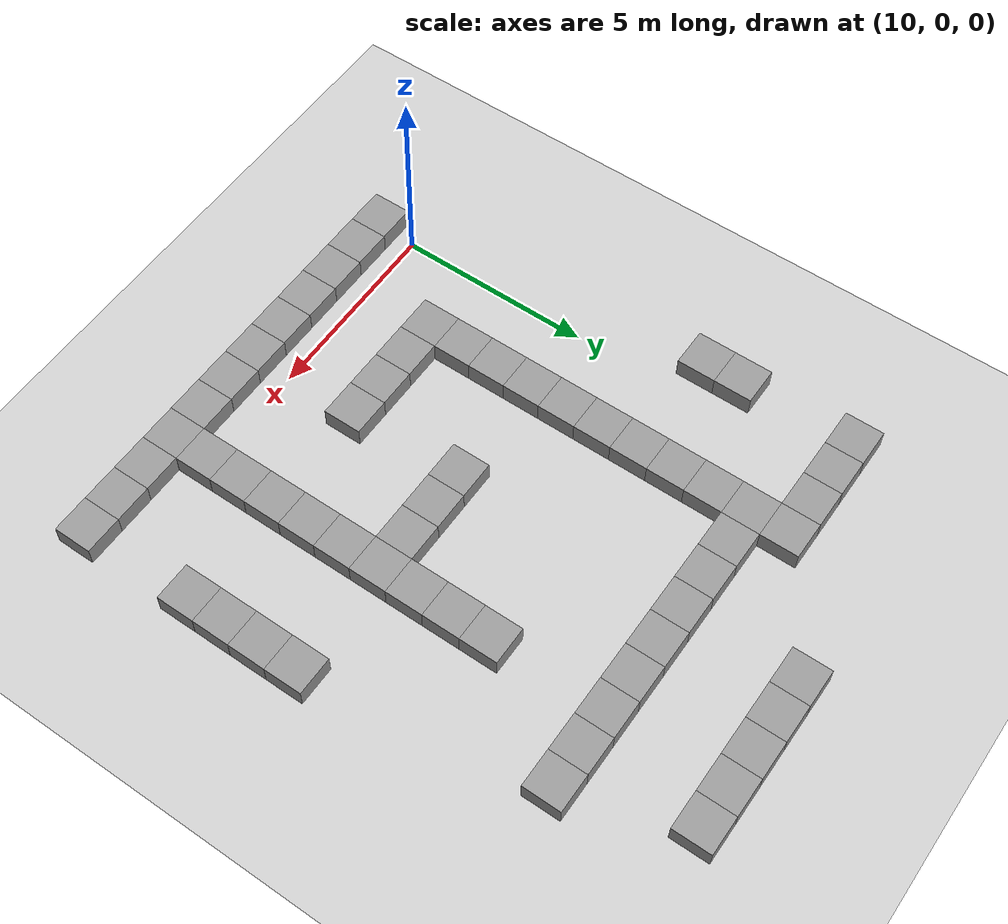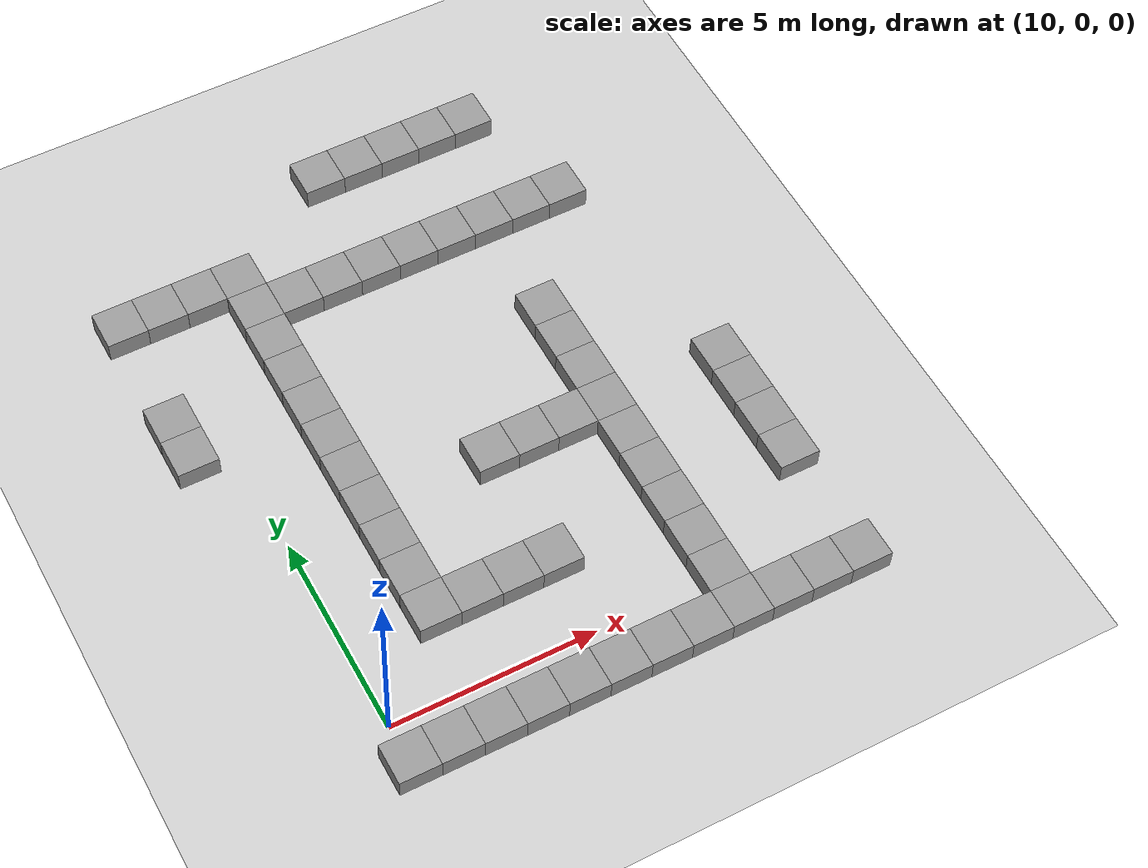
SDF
<sdf version="1.4">
 <world name="default">
  <model name="ground_plane">
   <static>1</static>
   <link name="link">
    <collision name="collision">
     <geometry><plane><normal>0 0 1</normal><size>100 100</size></plane></geometry>
     <surface><friction><ode><mu>100</mu><mu2>50</mu2></ode></friction></surface>
    </collision>
    <visual name="visual">
     <cast_shadows>0</cast_shadows>
     <geometry><plane><normal>0 0 1</normal><size>100 100</size></plane></geometry>
     <material>
      <script><uri>file://media/materials/scripts/gazebo.material</uri><name>Gazebo/Grey</name></script>
     </material>
    </visual>
    <velocity_decay><linear>0</linear><angular>0</angular></velocity_decay>
   </link>
  </model>
  <model name="unit_box_10">
   <pose>10 -1 0 0 -0 0</pose>
   <link name="link">
    <inertial>
     <mass>1</mass>
     <inertia><ixx>1</ixx><ixy>0</ixy><ixz>0</ixz><iyy>1</iyy><iyz>0</iyz><izz>1</izz></inertia>
    </inertial>
    <collision name="collision"><geometry><box><size>1 1 1</size></box></geometry></collision>
    <visual name="visual">
     <geometry><box><size>1 1 1</size></box></geometry>
     <material>
      <script><uri>file://media/materials/scripts/gazebo.material</uri><name>Gazebo/Grey</name></script>
     </material>
    </visual>
    <velocity_decay><linear>0</linear><angular>0</angular></velocity_decay>
   </link>
   <static>1</static>
  </model>
  <model name="unit_box_11">
   <pose>11 -1 0 0 -0 0</pose>
   <link name="link">
    <inertial>
     <mass>1</mass>
     <inertia><ixx>1</ixx><ixy>0</ixy><ixz>0</ixz><iyy>1</iyy><iyz>0</iyz><izz>1</izz></inertia>
    </inertial>
    <collision name="collision"><geometry><box><size>1 1 1</size></box></geometry></collision>
    <visual name="visual">
     <geometry><box><size>1 1 1</size></box></geometry>
     <material>
      <script><uri>file://media/materials/scripts/gazebo.material</uri><name>Gazebo/Grey</name></script>
     </material>
    </visual>
    <velocity_decay><linear>0</linear><angular>0</angular></velocity_decay>
   </link>
   <static>1</static>
  </model>
  <model name="unit_box_12">
   <pose>12 -1 0 0 -0 0</pose>
   <link name="link">
    <inertial>
     <mass>1</mass>
     <inertia><ixx>1</ixx><ixy>0</ixy><ixz>0</ixz><iyy>1</iyy><iyz>0</iyz><izz>1</izz></inertia>
    </inertial>
    <collision name="collision"><geometry><box><size>1 1 1</size></box></geometry></collision>
    <visual name="visual">
     <geometry><box><size>1 1 1</size></box></geometry>
     <material>
      <script><uri>file://media/materials/scripts/gazebo.material</uri><name>Gazebo/Grey</name></script>
     </material>
    </visual>
    <velocity_decay><linear>0</linear><angular>0</angular></velocity_decay>
   </link>
   <static>1</static>
  </model>
  <model name="unit_box_13">
   <pose>13 -1 0 0 -0 0</pose>
   <link name="link">
    <inertial>
     <mass>1</mass>
     <inertia><ixx>1</ixx><ixy>0</ixy><ixz>0</ixz><iyy>1</iyy><iyz>0</iyz><izz>1</izz></inertia>
    </inertial>
    <collision name="collision"><geometry><box><size>1 1 1</size></box></geometry></collision>
    <visual name="visual">
     <geometry><box><size>1 1 1</size></box></geometry>
     <material>
      <script><uri>file://media/materials/scripts/gazebo.material</uri><name>Gazebo/Grey</name></script>
     </material>
    </visual>
    <velocity_decay><linear>0</linear><angular>0</angular></velocity_decay>
   </link>
   <static>1</static>
  </model>
  <model name="unit_box_14">
   <pose>14 -1 0 0 -0 0</pose>
   <link name="link">
    <inertial>
     <mass>1</mass>
     <inertia><ixx>1</ixx><ixy>0</ixy><ixz>0</ixz><iyy>1</iyy><iyz>0</iyz><izz>1</izz></inertia>
    </inertial>
    <collision name="collision"><geometry><box><size>1 1 1</size></box></geometry></collision>
    <visual name="visual">
     <geometry><box><size>1 1 1</size></box></geometry>
     <material>
      <script><uri>file://media/materials/scripts/gazebo.material</uri><name>Gazebo/Grey</name></script>
     </material>
    </visual>
    <velocity_decay><linear>0</linear><angular>0</angular></velocity_decay>
   </link>
   <static>1</static>
  </model>
  <model name="unit_box_15">
   <pose>15 -1 0 0 -0 0</pose>
   <link name="link">
    <inertial>
     <mass>1</mass>
     <inertia><ixx>1</ixx><ixy>0</ixy><ixz>0</ixz><iyy>1</iyy><iyz>0</iyz><izz>1</izz></inertia>
    </inertial>
    <collision name="collision"><geometry><box><size>1 1 1</size></box></geometry></collision>
    <visual name="visual">
     <geometry><box><size>1 1 1</size></box></geometry>
     <material>
      <script><uri>file://media/materials/scripts/gazebo.material</uri><name>Gazebo/Grey</name></script>
     </material>
    </visual>
    <velocity_decay><linear>0</linear><angular>0</angular></velocity_decay>
   </link>
   <static>1</static>
  </model>
  <model name="unit_box_16">
   <pose>16 -1 0 0 -0 0</pose>
   <link name="link">
    <inertial>
     <mass>1</mass>
     <inertia><ixx>1</ixx><ixy>0</ixy><ixz>0</ixz><iyy>1</iyy><iyz>0</iyz><izz>1</izz></inertia>
    </inertial>
    <collision name="collision"><geometry><box><size>1 1 1</size></box></geometry></collision>
    <visual name="visual">
     <geometry><box><size>1 1 1</size></box></geometry>
     <material>
      <script><uri>file://media/materials/scripts/gazebo.material</uri><name>Gazebo/Grey</name></script>
     </material>
    </visual>
    <velocity_decay><linear>0</linear><angular>0</angular></velocity_decay>
   </link>
   <static>1</static>
  </model>
  <model name="unit_box_17">
   <pose>17 -1 0 0 -0 0</pose>
   <link name="link">
    <inertial>
     <mass>1</mass>
     <inertia><ixx>1</ixx><ixy>0</ixy><ixz>0</ixz><iyy>1</iyy><iyz>0</iyz><izz>1</izz></inertia>
    </inertial>
    <collision name="collision"><geometry><box><size>1 1 1</size></box></geometry></collision>
    <visual name="visual">
     <geometry><box><size>1 1 1</size></box></geometry>
     <material>
      <script><uri>file://media/materials/scripts/gazebo.material</uri><name>Gazebo/Grey</name></script>
     </material>
    </visual>
    <velocity_decay><linear>0</linear><angular>0</angular></velocity_decay>
   </link>
   <static>1</static>
  </model>
  <model name="unit_box_18">
   <pose>18 -1 0 0 -0 0</pose>
   <link name="link">
    <inertial>
     <mass>1</mass>
     <inertia><ixx>1</ixx><ixy>0</ixy><ixz>0</ixz><iyy>1</iyy><iyz>0</iyz><izz>1</izz></inertia>
    </inertial>
    <collision name="collision"><geometry><box><size>1 1 1</size></box></geometry></collision>
    <visual name="visual">
     <geometry><box><size>1 1 1</size></box></geometry>
     <material>
      <script><uri>file://media/materials/scripts/gazebo.material</uri><name>Gazebo/Grey</name></script>
     </material>
    </visual>
    <velocity_decay><linear>0</linear><angular>0</angular></velocity_decay>
   </link>
   <static>1</static>
  </model>
  <model name="unit_box_19">
   <pose>19 -1 0 0 -0 0</pose>
   <link name="link">
    <inertial>
     <mass>1</mass>
     <inertia><ixx>1</ixx><ixy>0</ixy><ixz>0</ixz><iyy>1</iyy><iyz>0</iyz><izz>1</izz></inertia>
    </inertial>
    <collision name="collision"><geometry><box><size>1 1 1</size></box></geometry></collision>
    <visual name="visual">
     <geometry><box><size>1 1 1</size></box></geometry>
     <material>
      <script><uri>file://media/materials/scripts/gazebo.material</uri><name>Gazebo/Grey</name></script>
     </material>
    </visual>
    <velocity_decay><linear>0</linear><angular>0</angular></velocity_decay>
   </link>
   <static>1</static>
  </model>
  <model name="unit_box_20">
   <pose>20 -1 0 0 -0 0</pose>
   <link name="link">
    <inertial>
     <mass>1</mass>
     <inertia><ixx>1</ixx><ixy>0</ixy><ixz>0</ixz><iyy>1</iyy><iyz>0</iyz><izz>1</izz></inertia>
    </inertial>
    <collision name="collision"><geometry><box><size>1 1 1</size></box></geometry></collision>
    <visual name="visual">
     <geometry><box><size>1 1 1</size></box></geometry>
     <material>
      <script><uri>file://media/materials/scripts/gazebo.material</uri><name>Gazebo/Grey</name></script>
     </material>
    </visual>
    <velocity_decay><linear>0</linear><angular>0</angular></velocity_decay>
   </link>
   <static>1</static>
  </model>
  <model name="unit_box_21">
   <pose>21 -1 0 0 -0 0</pose>
   <link name="link">
    <inertial>
     <mass>1</mass>
     <inertia><ixx>1</ixx><ixy>0</ixy><ixz>0</ixz><iyy>1</iyy><iyz>0</iyz><izz>1</izz></inertia>
    </inertial>
    <collision name="collision"><geometry><box><size>1 1 1</size></box></geometry></collision>
    <visual name="visual">
     <geometry><box><size>1 1 1</size></box></geometry>
     <material>
      <script><uri>file://media/materials/scripts/gazebo.material</uri><name>Gazebo/Grey</name></script>
     </material>
    </visual>
    <velocity_decay><linear>0</linear><angular>0</angular></velocity_decay>
   </link>
   <static>1</static>
  </model>
  <model name="unit_box_133">
   <pose>9 8 0 0 -0 0</pose>
   <link name="link">
    <inertial>
     <mass>1</mass>
     <inertia><ixx>1</ixx><ixy>0</ixy><ixz>0</ixz><iyy>1</iyy><iyz>0</iyz><izz>1</izz></inertia>
    </inertial>
    <collision name="collision"><geometry><box><size>1 1 1</size></box></geometry></collision>
    <visual name="visual">
     <geometry><box><size>1 1 1</size></box></geometry>
     <material>
      <script><uri>file://media/materials/scripts/gazebo.material</uri><name>Gazebo/Grey</name></script>
     </material>
    </visual>
    <velocity_decay><linear>0</linear><angular>0</angular></velocity_decay>
   </link>
   <static>1</static>
  </model>
  <model name="unit_box_134">
   <pose>9 9 0 0 -0 0</pose>
   <link name="link">
    <inertial>
     <mass>1</mass>
     <inertia><ixx>1</ixx><ixy>0</ixy><ixz>0</ixz><iyy>1</iyy><iyz>0</iyz><izz>1</izz></inertia>
    </inertial>
    <collision name="collision"><geometry><box><size>1 1 1</size></box></geometry></collision>
    <visual name="visual">
     <geometry><box><size>1 1 1</size></box></geometry>
     <material>
      <script><uri>file://media/materials/scripts/gazebo.material</uri><name>Gazebo/Grey</name></script>
     </material>
    </visual>
    <velocity_decay><linear>0</linear><angular>0</angular></velocity_decay>
   </link>
   <static>1</static>
  </model>
  <model name="unit_box_155">
   <pose>9 12 0 0 -0 0</pose>
   <link name="link">
    <inertial>
     <mass>1</mass>
     <inertia><ixx>1</ixx><ixy>0</ixy><ixz>0</ixz><iyy>1</iyy><iyz>0</iyz><izz>1</izz></inertia>
    </inertial>
    <collision name="collision"><geometry><box><size>1 1 1</size></box></geometry></collision>
    <visual name="visual">
     <geometry><box><size>1 1 1</size></box></geometry>
     <material>
      <script><uri>file://media/materials/scripts/gazebo.material</uri><name>Gazebo/Grey</name></script>
     </material>
    </visual>
    <velocity_decay><linear>0</linear><angular>0</angular></velocity_decay>
   </link>
   <static>1</static>
  </model>
  <model name="unit_box_156">
   <pose>10 12 0 0 -0 0</pose>
   <link name="link">
    <inertial>
     <mass>1</mass>
     <inertia><ixx>1</ixx><ixy>0</ixy><ixz>0</ixz><iyy>1</iyy><iyz>0</iyz><izz>1</izz></inertia>
    </inertial>
    <collision name="collision"><geometry><box><size>1 1 1</size></box></geometry></collision>
    <visual name="visual">
     <geometry><box><size>1 1 1</size></box></geometry>
     <material>
      <script><uri>file://media/materials/scripts/gazebo.material</uri><name>Gazebo/Grey</name></script>
     </material>
    </visual>
    <velocity_decay><linear>0</linear><angular>0</angular></velocity_decay>
   </link>
   <static>1</static>
  </model>
  <model name="unit_box_157">
   <pose>11 12 0 0 -0 0</pose>
   <link name="link">
    <inertial>
     <mass>1</mass>
     <inertia><ixx>1</ixx><ixy>0</ixy><ixz>0</ixz><iyy>1</iyy><iyz>0</iyz><izz>1</izz></inertia>
    </inertial>
    <collision name="collision"><geometry><box><size>1 1 1</size></box></geometry></collision>
    <visual name="visual">
     <geometry><box><size>1 1 1</size></box></geometry>
     <material>
      <script><uri>file://media/materials/scripts/gazebo.material</uri><name>Gazebo/Grey</name></script>
     </material>
    </visual>
    <velocity_decay><linear>0</linear><angular>0</angular></velocity_decay>
   </link>
   <static>1</static>
  </model>
  <model name="unit_box_158">
   <pose>12 12 0 0 -0 0</pose>
   <link name="link">
    <inertial>
     <mass>1</mass>
     <inertia><ixx>1</ixx><ixy>0</ixy><ixz>0</ixz><iyy>1</iyy><iyz>0</iyz><izz>1</izz></inertia>
    </inertial>
    <collision name="collision"><geometry><box><size>1 1 1</size></box></geometry></collision>
    <visual name="visual">
     <geometry><box><size>1 1 1</size></box></geometry>
     <material>
      <script><uri>file://media/materials/scripts/gazebo.material</uri><name>Gazebo/Grey</name></script>
     </material>
    </visual>
    <velocity_decay><linear>0</linear><angular>0</angular></velocity_decay>
   </link>
   <static>1</static>
  </model>
  <model name="unit_box_159">
   <pose>12 11 0 0 -0 0</pose>
   <link name="link">
    <inertial>
     <mass>1</mass>
     <inertia><ixx>1</ixx><ixy>0</ixy><ixz>0</ixz><iyy>1</iyy><iyz>0</iyz><izz>1</izz></inertia>
    </inertial>
    <collision name="collision"><geometry><box><size>1 1 1</size></box></geometry></collision>
    <visual name="visual">
     <geometry><box><size>1 1 1</size></box></geometry>
     <material>
      <script><uri>file://media/materials/scripts/gazebo.material</uri><name>Gazebo/Grey</name></script>
     </material>
    </visual>
    <velocity_decay><linear>0</linear><angular>0</angular></velocity_decay>
   </link>
   <static>1</static>
  </model>
  <model name="unit_box_160">
   <pose>12 10 0 0 -0 0</pose>
   <link name="link">
    <inertial>
     <mass>1</mass>
     <inertia><ixx>1</ixx><ixy>0</ixy><ixz>0</ixz><iyy>1</iyy><iyz>0</iyz><izz>1</izz></inertia>
    </inertial>
    <collision name="collision"><geometry><box><size>1 1 1</size></box></geometry></collision>
    <visual name="visual">
     <geometry><box><size>1 1 1</size></box></geometry>
     <material>
      <script><uri>file://media/materials/scripts/gazebo.material</uri><name>Gazebo/Grey</name></script>
     </material>
    </visual>
    <velocity_decay><linear>0</linear><angular>0</angular></velocity_decay>
   </link>
   <static>1</static>
  </model>
  <model name="unit_box_161">
   <pose>12 9 0 0 -0 0</pose>
   <link name="link">
    <inertial>
     <mass>1</mass>
     <inertia><ixx>1</ixx><ixy>0</ixy><ixz>0</ixz><iyy>1</iyy><iyz>0</iyz><izz>1</izz></inertia>
    </inertial>
    <collision name="collision"><geometry><box><size>1 1 1</size></box></geometry></collision>
    <visual name="visual">
     <geometry><box><size>1 1 1</size></box></geometry>
     <material>
      <script><uri>file://media/materials/scripts/gazebo.material</uri><name>Gazebo/Grey</name></script>
     </material>
    </visual>
    <velocity_decay><linear>0</linear><angular>0</angular></velocity_decay>
   </link>
   <static>1</static>
  </model>
  <model name="unit_box_162">
   <pose>12 8 0 0 -0 0</pose>
   <link name="link">
    <inertial>
     <mass>1</mass>
     <inertia><ixx>1</ixx><ixy>0</ixy><ixz>0</ixz><iyy>1</iyy><iyz>0</iyz><izz>1</izz></inertia>
    </inertial>
    <collision name="collision"><geometry><box><size>1 1 1</size></box></geometry></collision>
    <visual name="visual">
     <geometry><box><size>1 1 1</size></box></geometry>
     <material>
      <script><uri>file://media/materials/scripts/gazebo.material</uri><name>Gazebo/Grey</name></script>
     </material>
    </visual>
    <velocity_decay><linear>0</linear><angular>0</angular></velocity_decay>
   </link>
   <static>1</static>
  </model>
  <model name="unit_box_163">
   <pose>12 7 0 0 -0 0</pose>
   <link name="link">
    <inertial>
     <mass>1</mass>
     <inertia><ixx>1</ixx><ixy>0</ixy><ixz>0</ixz><iyy>1</iyy><iyz>0</iyz><izz>1</izz></inertia>
    </inertial>
    <collision name="collision"><geometry><box><size>1 1 1</size></box></geometry></collision>
    <visual name="visual">
     <geometry><box><size>1 1 1</size></box></geometry>
     <material>
      <script><uri>file://media/materials/scripts/gazebo.material</uri><name>Gazebo/Grey</name></script>
     </material>
    </visual>
    <velocity_decay><linear>0</linear><angular>0</angular></velocity_decay>
   </link>
   <static>1</static>
  </model>
  <model name="unit_box_164">
   <pose>12 6 0 0 -0 0</pose>
   <link name="link">
    <inertial>
     <mass>1</mass>
     <inertia><ixx>1</ixx><ixy>0</ixy><ixz>0</ixz><iyy>1</iyy><iyz>0</iyz><izz>1</izz></inertia>
    </inertial>
    <collision name="collision"><geometry><box><size>1 1 1</size></box></geometry></collision>
    <visual name="visual">
     <geometry><box><size>1 1 1</size></box></geometry>
     <material>
      <script><uri>file://media/materials/scripts/gazebo.material</uri><name>Gazebo/Grey</name></script>
     </material>
    </visual>
    <velocity_decay><linear>0</linear><angular>0</angular></velocity_decay>
   </link>
   <static>1</static>
  </model>
  <model name="unit_box_165">
   <pose>12 5 0 0 -0 0</pose>
   <link name="link">
    <inertial>
     <mass>1</mass>
     <inertia><ixx>1</ixx><ixy>0</ixy><ixz>0</ixz><iyy>1</iyy><iyz>0</iyz><izz>1</izz></inertia>
    </inertial>
    <collision name="collision"><geometry><box><size>1 1 1</size></box></geometry></collision>
    <visual name="visual">
     <geometry><box><size>1 1 1</size></box></geometry>
     <material>
      <script><uri>file://media/materials/scripts/gazebo.material</uri><name>Gazebo/Grey</name></script>
     </material>
    </visual>
    <velocity_decay><linear>0</linear><angular>0</angular></velocity_decay>
   </link>
   <static>1</static>
  </model>
  <model name="unit_box_166">
   <pose>12 4 0 0 -0 0</pose>
   <link name="link">
    <inertial>
     <mass>1</mass>
     <inertia><ixx>1</ixx><ixy>0</ixy><ixz>0</ixz><iyy>1</iyy><iyz>0</iyz><izz>1</izz></inertia>
    </inertial>
    <collision name="collision"><geometry><box><size>1 1 1</size></box></geometry></collision>
    <visual name="visual">
     <geometry><box><size>1 1 1</size></box></geometry>
     <material>
      <script><uri>file://media/materials/scripts/gazebo.material</uri><name>Gazebo/Grey</name></script>
     </material>
    </visual>
    <velocity_decay><linear>0</linear><angular>0</angular></velocity_decay>
   </link>
   <static>1</static>
  </model>
  <model name="unit_box_167">
   <pose>12 3 0 0 -0 0</pose>
   <link name="link">
    <inertial>
     <mass>1</mass>
     <inertia><ixx>1</ixx><ixy>0</ixy><ixz>0</ixz><iyy>1</iyy><iyz>0</iyz><izz>1</izz></inertia>
    </inertial>
    <collision name="collision"><geometry><box><size>1 1 1</size></box></geometry></collision>
    <visual name="visual">
     <geometry><box><size>1 1 1</size></box></geometry>
     <material>
      <script><uri>file://media/materials/scripts/gazebo.material</uri><name>Gazebo/Grey</name></script>
     </material>
    </visual>
    <velocity_decay><linear>0</linear><angular>0</angular></velocity_decay>
   </link>
   <static>1</static>
  </model>
  <model name="unit_box_168">
   <pose>12 2 0 0 -0 0</pose>
   <link name="link">
    <inertial>
     <mass>1</mass>
     <inertia><ixx>1</ixx><ixy>0</ixy><ixz>0</ixz><iyy>1</iyy><iyz>0</iyz><izz>1</izz></inertia>
    </inertial>
    <collision name="collision"><geometry><box><size>1 1 1</size></box></geometry></collision>
    <visual name="visual">
     <geometry><box><size>1 1 1</size></box></geometry>
     <material>
      <script><uri>file://media/materials/scripts/gazebo.material</uri><name>Gazebo/Grey</name></script>
     </material>
    </visual>
    <velocity_decay><linear>0</linear><angular>0</angular></velocity_decay>
   </link>
   <static>1</static>
  </model>
  <model name="unit_box_169">
   <pose>13 2 0 0 -0 0</pose>
   <link name="link">
    <inertial>
     <mass>1</mass>
     <inertia><ixx>1</ixx><ixy>0</ixy><ixz>0</ixz><iyy>1</iyy><iyz>0</iyz><izz>1</izz></inertia>
    </inertial>
    <collision name="collision"><geometry><box><size>1 1 1</size></box></geometry></collision>
    <visual name="visual">
     <geometry><box><size>1 1 1</size></box></geometry>
     <material>
      <script><uri>file://media/materials/scripts/gazebo.material</uri><name>Gazebo/Grey</name></script>
     </material>
    </visual>
    <velocity_decay><linear>0</linear><angular>0</angular></velocity_decay>
   </link>
   <static>1</static>
  </model>
  <model name="unit_box_170">
   <pose>14 2 0 0 -0 0</pose>
   <link name="link">
    <inertial>
     <mass>1</mass>
     <inertia><ixx>1</ixx><ixy>0</ixy><ixz>0</ixz><iyy>1</iyy><iyz>0</iyz><izz>1</izz></inertia>
    </inertial>
    <collision name="collision"><geometry><box><size>1 1 1</size></box></geometry></collision>
    <visual name="visual">
     <geometry><box><size>1 1 1</size></box></geometry>
     <material>
      <script><uri>file://media/materials/scripts/gazebo.material</uri><name>Gazebo/Grey</name></script>
     </material>
    </visual>
    <velocity_decay><linear>0</linear><angular>0</angular></velocity_decay>
   </link>
   <static>1</static>
  </model>
  <model name="unit_box_171">
   <pose>15 2 0 0 -0 0</pose>
   <link name="link">
    <inertial>
     <mass>1</mass>
     <inertia><ixx>1</ixx><ixy>0</ixy><ixz>0</ixz><iyy>1</iyy><iyz>0</iyz><izz>1</izz></inertia>
    </inertial>
    <collision name="collision"><geometry><box><size>1 1 1</size></box></geometry></collision>
    <visual name="visual">
     <geometry><box><size>1 1 1</size></box></geometry>
     <material>
      <script><uri>file://media/materials/scripts/gazebo.material</uri><name>Gazebo/Grey</name></script>
     </material>
    </visual>
    <velocity_decay><linear>0</linear><angular>0</angular></velocity_decay>
   </link>
   <static>1</static>
  </model>
  <model name="unit_box_172">
   <pose>18 0 0 0 -0 0</pose>
   <link name="link">
    <inertial>
     <mass>1</mass>
     <inertia><ixx>1</ixx><ixy>0</ixy><ixz>0</ixz><iyy>1</iyy><iyz>0</iyz><izz>1</izz></inertia>
    </inertial>
    <collision name="collision"><geometry><box><size>1 1 1</size></box></geometry></collision>
    <visual name="visual">
     <geometry><box><size>1 1 1</size></box></geometry>
     <material>
      <script><uri>file://media/materials/scripts/gazebo.material</uri><name>Gazebo/Grey</name></script>
     </material>
    </visual>
    <velocity_decay><linear>0</linear><angular>0</angular></velocity_decay>
   </link>
   <static>1</static>
  </model>
  <model name="unit_box_173">
   <pose>18 1 0 0 -0 0</pose>
   <link name="link">
    <inertial>
     <mass>1</mass>
     <inertia><ixx>1</ixx><ixy>0</ixy><ixz>0</ixz><iyy>1</iyy><iyz>0</iyz><izz>1</izz></inertia>
    </inertial>
    <collision name="collision"><geometry><box><size>1 1 1</size></box></geometry></collision>
    <visual name="visual">
     <geometry><box><size>1 1 1</size></box></geometry>
     <material>
      <script><uri>file://media/materials/scripts/gazebo.material</uri><name>Gazebo/Grey</name></script>
     </material>
    </visual>
    <velocity_decay><linear>0</linear><angular>0</angular></velocity_decay>
   </link>
   <static>1</static>
  </model>
  <model name="unit_box_174">
   <pose>18 2 0 0 -0 0</pose>
   <link name="link">
    <inertial>
     <mass>1</mass>
     <inertia><ixx>1</ixx><ixy>0</ixy><ixz>0</ixz><iyy>1</iyy><iyz>0</iyz><izz>1</izz></inertia>
    </inertial>
    <collision name="collision"><geometry><box><size>1 1 1</size></box></geometry></collision>
    <visual name="visual">
     <geometry><box><size>1 1 1</size></box></geometry>
     <material>
      <script><uri>file://media/materials/scripts/gazebo.material</uri><name>Gazebo/Grey</name></script>
     </material>
    </visual>
    <velocity_decay><linear>0</linear><angular>0</angular></velocity_decay>
   </link>
   <static>1</static>
  </model>
  <model name="unit_box_175">
   <pose>18 3 0 0 -0 0</pose>
   <link name="link">
    <inertial>
     <mass>1</mass>
     <inertia><ixx>1</ixx><ixy>0</ixy><ixz>0</ixz><iyy>1</iyy><iyz>0</iyz><izz>1</izz></inertia>
    </inertial>
    <collision name="collision"><geometry><box><size>1 1 1</size></box></geometry></collision>
    <visual name="visual">
     <geometry><box><size>1 1 1</size></box></geometry>
     <material>
      <script><uri>file://media/materials/scripts/gazebo.material</uri><name>Gazebo/Grey</name></script>
     </material>
    </visual>
    <velocity_decay><linear>0</linear><angular>0</angular></velocity_decay>
   </link>
   <static>1</static>
  </model>
  <model name="unit_box_176">
   <pose>18 4 0 0 -0 0</pose>
   <link name="link">
    <inertial>
     <mass>1</mass>
     <inertia><ixx>1</ixx><ixy>0</ixy><ixz>0</ixz><iyy>1</iyy><iyz>0</iyz><izz>1</izz></inertia>
    </inertial>
    <collision name="collision"><geometry><box><size>1 1 1</size></box></geometry></collision>
    <visual name="visual">
     <geometry><box><size>1 1 1</size></box></geometry>
     <material>
      <script><uri>file://media/materials/scripts/gazebo.material</uri><name>Gazebo/Grey</name></script>
     </material>
    </visual>
    <velocity_decay><linear>0</linear><angular>0</angular></velocity_decay>
   </link>
   <static>1</static>
  </model>
  <model name="unit_box_177">
   <pose>18 5 0 0 -0 0</pose>
   <link name="link">
    <inertial>
     <mass>1</mass>
     <inertia><ixx>1</ixx><ixy>0</ixy><ixz>0</ixz><iyy>1</iyy><iyz>0</iyz><izz>1</izz></inertia>
    </inertial>
    <collision name="collision"><geometry><box><size>1 1 1</size></box></geometry></collision>
    <visual name="visual">
     <geometry><box><size>1 1 1</size></box></geometry>
     <material>
      <script><uri>file://media/materials/scripts/gazebo.material</uri><name>Gazebo/Grey</name></script>
     </material>
    </visual>
    <velocity_decay><linear>0</linear><angular>0</angular></velocity_decay>
   </link>
   <static>1</static>
  </model>
  <model name="unit_box_178">
   <pose>18 6 0 0 -0 0</pose>
   <link name="link">
    <inertial>
     <mass>1</mass>
     <inertia><ixx>1</ixx><ixy>0</ixy><ixz>0</ixz><iyy>1</iyy><iyz>0</iyz><izz>1</izz></inertia>
    </inertial>
    <collision name="collision"><geometry><box><size>1 1 1</size></box></geometry></collision>
    <visual name="visual">
     <geometry><box><size>1 1 1</size></box></geometry>
     <material>
      <script><uri>file://media/materials/scripts/gazebo.material</uri><name>Gazebo/Grey</name></script>
     </material>
    </visual>
    <velocity_decay><linear>0</linear><angular>0</angular></velocity_decay>
   </link>
   <static>1</static>
  </model>
  <model name="unit_box_179">
   <pose>18 7 0 0 -0 0</pose>
   <link name="link">
    <inertial>
     <mass>1</mass>
     <inertia><ixx>1</ixx><ixy>0</ixy><ixz>0</ixz><iyy>1</iyy><iyz>0</iyz><izz>1</izz></inertia>
    </inertial>
    <collision name="collision"><geometry><box><size>1 1 1</size></box></geometry></collision>
    <visual name="visual">
     <geometry><box><size>1 1 1</size></box></geometry>
     <material>
      <script><uri>file://media/materials/scripts/gazebo.material</uri><name>Gazebo/Grey</name></script>
     </material>
    </visual>
    <velocity_decay><linear>0</linear><angular>0</angular></velocity_decay>
   </link>
   <static>1</static>
  </model>
  <model name="unit_box_180">
   <pose>18 8 0 0 -0 0</pose>
   <link name="link">
    <inertial>
     <mass>1</mass>
     <inertia><ixx>1</ixx><ixy>0</ixy><ixz>0</ixz><iyy>1</iyy><iyz>0</iyz><izz>1</izz></inertia>
    </inertial>
    <collision name="collision"><geometry><box><size>1 1 1</size></box></geometry></collision>
    <visual name="visual">
     <geometry><box><size>1 1 1</size></box></geometry>
     <material>
      <script><uri>file://media/materials/scripts/gazebo.material</uri><name>Gazebo/Grey</name></script>
     </material>
    </visual>
    <velocity_decay><linear>0</linear><angular>0</angular></velocity_decay>
   </link>
   <static>1</static>
  </model>
  <model name="unit_box_181">
   <pose>17 5 0 0 -0 0</pose>
   <link name="link">
    <inertial>
     <mass>1</mass>
     <inertia><ixx>1</ixx><ixy>0</ixy><ixz>0</ixz><iyy>1</iyy><iyz>0</iyz><izz>1</izz></inertia>
    </inertial>
    <collision name="collision"><geometry><box><size>1 1 1</size></box></geometry></collision>
    <visual name="visual">
     <geometry><box><size>1 1 1</size></box></geometry>
     <material>
      <script><uri>file://media/materials/scripts/gazebo.material</uri><name>Gazebo/Grey</name></script>
     </material>
    </visual>
    <velocity_decay><linear>0</linear><angular>0</angular></velocity_decay>
   </link>
   <static>1</static>
  </model>
  <model name="unit_box_182">
   <pose>16 5 0 0 -0 0</pose>
   <link name="link">
    <inertial>
     <mass>1</mass>
     <inertia><ixx>1</ixx><ixy>0</ixy><ixz>0</ixz><iyy>1</iyy><iyz>0</iyz><izz>1</izz></inertia>
    </inertial>
    <collision name="collision"><geometry><box><size>1 1 1</size></box></geometry></collision>
    <visual name="visual">
     <geometry><box><size>1 1 1</size></box></geometry>
     <material>
      <script><uri>file://media/materials/scripts/gazebo.material</uri><name>Gazebo/Grey</name></script>
     </material>
    </visual>
    <velocity_decay><linear>0</linear><angular>0</angular></velocity_decay>
   </link>
   <static>1</static>
  </model>
  <model name="unit_box_183">
   <pose>15 5 0 0 -0 0</pose>
   <link name="link">
    <inertial>
     <mass>1</mass>
     <inertia><ixx>1</ixx><ixy>0</ixy><ixz>0</ixz><iyy>1</iyy><iyz>0</iyz><izz>1</izz></inertia>
    </inertial>
    <collision name="collision"><geometry><box><size>1 1 1</size></box></geometry></collision>
    <visual name="visual">
     <geometry><box><size>1 1 1</size></box></geometry>
     <material>
      <script><uri>file://media/materials/scripts/gazebo.material</uri><name>Gazebo/Grey</name></script>
     </material>
    </visual>
    <velocity_decay><linear>0</linear><angular>0</angular></velocity_decay>
   </link>
   <static>1</static>
  </model>
  <model name="unit_box_184">
   <pose>13 11 0 0 -0 0</pose>
   <link name="link">
    <inertial>
     <mass>1</mass>
     <inertia><ixx>1</ixx><ixy>0</ixy><ixz>0</ixz><iyy>1</iyy><iyz>0</iyz><izz>1</izz></inertia>
    </inertial>
    <collision name="collision"><geometry><box><size>1 1 1</size></box></geometry></collision>
    <visual name="visual">
     <geometry><box><size>1 1 1</size></box></geometry>
     <material>
      <script><uri>file://media/materials/scripts/gazebo.material</uri><name>Gazebo/Grey</name></script>
     </material>
    </visual>
    <velocity_decay><linear>0</linear><angular>0</angular></velocity_decay>
   </link>
   <static>1</static>
  </model>
  <model name="unit_box_185">
   <pose>14 11 0 0 -0 0</pose>
   <link name="link">
    <inertial>
     <mass>1</mass>
     <inertia><ixx>1</ixx><ixy>0</ixy><ixz>0</ixz><iyy>1</iyy><iyz>0</iyz><izz>1</izz></inertia>
    </inertial>
    <collision name="collision"><geometry><box><size>1 1 1</size></box></geometry></collision>
    <visual name="visual">
     <geometry><box><size>1 1 1</size></box></geometry>
     <material>
      <script><uri>file://media/materials/scripts/gazebo.material</uri><name>Gazebo/Grey</name></script>
     </material>
    </visual>
    <velocity_decay><linear>0</linear><angular>0</angular></velocity_decay>
   </link>
   <static>1</static>
  </model>
  <model name="unit_box_186">
   <pose>15 11 0 0 -0 0</pose>
   <link name="link">
    <inertial>
     <mass>1</mass>
     <inertia><ixx>1</ixx><ixy>0</ixy><ixz>0</ixz><iyy>1</iyy><iyz>0</iyz><izz>1</izz></inertia>
    </inertial>
    <collision name="collision"><geometry><box><size>1 1 1</size></box></geometry></collision>
    <visual name="visual">
     <geometry><box><size>1 1 1</size></box></geometry>
     <material>
      <script><uri>file://media/materials/scripts/gazebo.material</uri><name>Gazebo/Grey</name></script>
     </material>
    </visual>
    <velocity_decay><linear>0</linear><angular>0</angular></velocity_decay>
   </link>
   <static>1</static>
  </model>
  <model name="unit_box_187">
   <pose>16 11 0 0 -0 0</pose>
   <link name="link">
    <inertial>
     <mass>1</mass>
     <inertia><ixx>1</ixx><ixy>0</ixy><ixz>0</ixz><iyy>1</iyy><iyz>0</iyz><izz>1</izz></inertia>
    </inertial>
    <collision name="collision"><geometry><box><size>1 1 1</size></box></geometry></collision>
    <visual name="visual">
     <geometry><box><size>1 1 1</size></box></geometry>
     <material>
      <script><uri>file://media/materials/scripts/gazebo.material</uri><name>Gazebo/Grey</name></script>
     </material>
    </visual>
    <velocity_decay><linear>0</linear><angular>0</angular></velocity_decay>
   </link>
   <static>1</static>
  </model>
  <model name="unit_box_188">
   <pose>17 11 0 0 -0 0</pose>
   <link name="link">
    <inertial>
     <mass>1</mass>
     <inertia><ixx>1</ixx><ixy>0</ixy><ixz>0</ixz><iyy>1</iyy><iyz>0</iyz><izz>1</izz></inertia>
    </inertial>
    <collision name="collision"><geometry><box><size>1 1 1</size></box></geometry></collision>
    <visual name="visual">
     <geometry><box><size>1 1 1</size></box></geometry>
     <material>
      <script><uri>file://media/materials/scripts/gazebo.material</uri><name>Gazebo/Grey</name></script>
     </material>
    </visual>
    <velocity_decay><linear>0</linear><angular>0</angular></velocity_decay>
   </link>
   <static>1</static>
  </model>
  <model name="unit_box_189">
   <pose>18 11 0 0 -0 0</pose>
   <link name="link">
    <inertial>
     <mass>1</mass>
     <inertia><ixx>1</ixx><ixy>0</ixy><ixz>0</ixz><iyy>1</iyy><iyz>0</iyz><izz>1</izz></inertia>
    </inertial>
    <collision name="collision"><geometry><box><size>1 1 1</size></box></geometry></collision>
    <visual name="visual">
     <geometry><box><size>1 1 1</size></box></geometry>
     <material>
      <script><uri>file://media/materials/scripts/gazebo.material</uri><name>Gazebo/Grey</name></script>
     </material>
    </visual>
    <velocity_decay><linear>0</linear><angular>0</angular></velocity_decay>
   </link>
   <static>1</static>
  </model>
  <model name="unit_box_190">
   <pose>19 11 0 0 -0 0</pose>
   <link name="link">
    <inertial>
     <mass>1</mass>
     <inertia><ixx>1</ixx><ixy>0</ixy><ixz>0</ixz><iyy>1</iyy><iyz>0</iyz><izz>1</izz></inertia>
    </inertial>
    <collision name="collision"><geometry><box><size>1 1 1</size></box></geometry></collision>
    <visual name="visual">
     <geometry><box><size>1 1 1</size></box></geometry>
     <material>
      <script><uri>file://media/materials/scripts/gazebo.material</uri><name>Gazebo/Grey</name></script>
     </material>
    </visual>
    <velocity_decay><linear>0</linear><angular>0</angular></velocity_decay>
   </link>
   <static>1</static>
  </model>
  <model name="unit_box_191">
   <pose>20 11 0 0 -0 0</pose>
   <link name="link">
    <inertial>
     <mass>1</mass>
     <inertia><ixx>1</ixx><ixy>0</ixy><ixz>0</ixz><iyy>1</iyy><iyz>0</iyz><izz>1</izz></inertia>
    </inertial>
    <collision name="collision"><geometry><box><size>1 1 1</size></box></geometry></collision>
    <visual name="visual">
     <geometry><box><size>1 1 1</size></box></geometry>
     <material>
      <script><uri>file://media/materials/scripts/gazebo.material</uri><name>Gazebo/Grey</name></script>
     </material>
    </visual>
    <velocity_decay><linear>0</linear><angular>0</angular></velocity_decay>
   </link>
   <static>1</static>
  </model>
  <model name="unit_box_198">
   <pose>21 5 0 0 -0 0</pose>
   <link name="link">
    <inertial>
     <mass>1</mass>
     <inertia><ixx>1</ixx><ixy>0</ixy><ixz>0</ixz><iyy>1</iyy><iyz>0</iyz><izz>1</izz></inertia>
    </inertial>
    <collision name="collision"><geometry><box><size>1 1 1</size></box></geometry></collision>
    <visual name="visual">
     <geometry><box><size>1 1 1</size></box></geometry>
     <material>
      <script><uri>file://media/materials/scripts/gazebo.material</uri><name>Gazebo/Grey</name></script>
     </material>
    </visual>
    <velocity_decay><linear>0</linear><angular>0</angular></velocity_decay>
   </link>
   <static>1</static>
  </model>
  <model name="unit_box_199">
   <pose>21 4 0 0 -0 0</pose>
   <link name="link">
    <inertial>
     <mass>1</mass>
     <inertia><ixx>1</ixx><ixy>0</ixy><ixz>0</ixz><iyy>1</iyy><iyz>0</iyz><izz>1</izz></inertia>
    </inertial>
    <collision name="collision"><geometry><box><size>1 1 1</size></box></geometry></collision>
    <visual name="visual">
     <geometry><box><size>1 1 1</size></box></geometry>
     <material>
      <script><uri>file://media/materials/scripts/gazebo.material</uri><name>Gazebo/Grey</name></script>
     </material>
    </visual>
    <velocity_decay><linear>0</linear><angular>0</angular></velocity_decay>
   </link>
   <static>1</static>
  </model>
  <model name="unit_box_200">
   <pose>21 3 0 0 -0 0</pose>
   <link name="link">
    <inertial>
     <mass>1</mass>
     <inertia><ixx>1</ixx><ixy>0</ixy><ixz>0</ixz><iyy>1</iyy><iyz>0</iyz><izz>1</izz></inertia>
    </inertial>
    <collision name="collision"><geometry><box><size>1 1 1</size></box></geometry></collision>
    <visual name="visual">
     <geometry><box><size>1 1 1</size></box></geometry>
     <material>
      <script><uri>file://media/materials/scripts/gazebo.material</uri><name>Gazebo/Grey</name></script>
     </material>
    </visual>
    <velocity_decay><linear>0</linear><angular>0</angular></velocity_decay>
   </link>
   <static>1</static>
  </model>
  <model name="unit_box_201">
   <pose>21 2 0 0 -0 0</pose>
   <link name="link">
    <inertial>
     <mass>1</mass>
     <inertia><ixx>1</ixx><ixy>0</ixy><ixz>0</ixz><iyy>1</iyy><iyz>0</iyz><izz>1</izz></inertia>
    </inertial>
    <collision name="collision"><geometry><box><size>1 1 1</size></box></geometry></collision>
    <visual name="visual">
     <geometry><box><size>1 1 1</size></box></geometry>
     <material>
      <script><uri>file://media/materials/scripts/gazebo.material</uri><name>Gazebo/Grey</name></script>
     </material>
    </visual>
    <velocity_decay><linear>0</linear><angular>0</angular></velocity_decay>
   </link>
   <static>1</static>
  </model>
  <model name="unit_box_255">
   <pose>15 14 0 0 -0 0</pose>
   <link name="link">
    <inertial>
     <mass>1</mass>
     <inertia><ixx>1</ixx><ixy>0</ixy><ixz>0</ixz><iyy>1</iyy><iyz>0</iyz><izz>1</izz></inertia>
    </inertial>
    <collision name="collision"><geometry><box><size>1 1 1</size></box></geometry></collision>
    <visual name="visual">
     <geometry><box><size>1 1 1</size></box></geometry>
     <material>
      <script><uri>file://media/materials/scripts/gazebo.material</uri><name>Gazebo/Grey</name></script>
     </material>
    </visual>
    <velocity_decay><linear>0</linear><angular>0</angular></velocity_decay>
   </link>
   <static>1</static>
  </model>
  <model name="unit_box_256">
   <pose>16 14 0 0 -0 0</pose>
   <link name="link">
    <inertial>
     <mass>1</mass>
     <inertia><ixx>1</ixx><ixy>0</ixy><ixz>0</ixz><iyy>1</iyy><iyz>0</iyz><izz>1</izz></inertia>
    </inertial>
    <collision name="collision"><geometry><box><size>1 1 1</size></box></geometry></collision>
    <visual name="visual">
     <geometry><box><size>1 1 1</size></box></geometry>
     <material>
      <script><uri>file://media/materials/scripts/gazebo.material</uri><name>Gazebo/Grey</name></script>
     </material>
    </visual>
    <velocity_decay><linear>0</linear><angular>0</angular></velocity_decay>
   </link>
   <static>1</static>
  </model>
  <model name="unit_box_257">
   <pose>17 14 0 0 -0 0</pose>
   <link name="link">
    <inertial>
     <mass>1</mass>
     <inertia><ixx>1</ixx><ixy>0</ixy><ixz>0</ixz><iyy>1</iyy><iyz>0</iyz><izz>1</izz></inertia>
    </inertial>
    <collision name="collision"><geometry><box><size>1 1 1</size></box></geometry></collision>
    <visual name="visual">
     <geometry><box><size>1 1 1</size></box></geometry>
     <material>
      <script><uri>file://media/materials/scripts/gazebo.material</uri><name>Gazebo/Grey</name></script>
     </material>
    </visual>
    <velocity_decay><linear>0</linear><angular>0</angular></velocity_decay>
   </link>
   <static>1</static>
  </model>
  <model name="unit_box_258">
   <pose>18 14 0 0 -0 0</pose>
   <link name="link">
    <inertial>
     <mass>1</mass>
     <inertia><ixx>1</ixx><ixy>0</ixy><ixz>0</ixz><iyy>1</iyy><iyz>0</iyz><izz>1</izz></inertia>
    </inertial>
    <collision name="collision"><geometry><box><size>1 1 1</size></box></geometry></collision>
    <visual name="visual">
     <geometry><box><size>1 1 1</size></box></geometry>
     <material>
      <script><uri>file://media/materials/scripts/gazebo.material</uri><name>Gazebo/Grey</name></script>
     </material>
    </visual>
    <velocity_decay><linear>0</linear><angular>0</angular></velocity_decay>
   </link>
   <static>1</static>
  </model>
  <model name="unit_box_259">
   <pose>19 14 0 0 -0 0</pose>
   <link name="link">
    <inertial>
     <mass>1</mass>
     <inertia><ixx>1</ixx><ixy>0</ixy><ixz>0</ixz><iyy>1</iyy><iyz>0</iyz><izz>1</izz></inertia>
    </inertial>
    <collision name="collision"><geometry><box><size>1 1 1</size></box></geometry></collision>
    <visual name="visual">
     <geometry><box><size>1 1 1</size></box></geometry>
     <material>
      <script><uri>file://media/materials/scripts/gazebo.material</uri><name>Gazebo/Grey</name></script>
     </material>
    </visual>
    <velocity_decay><linear>0</linear><angular>0</angular></velocity_decay>
   </link>
   <static>1</static>
  </model>
 </world>
</sdf>
